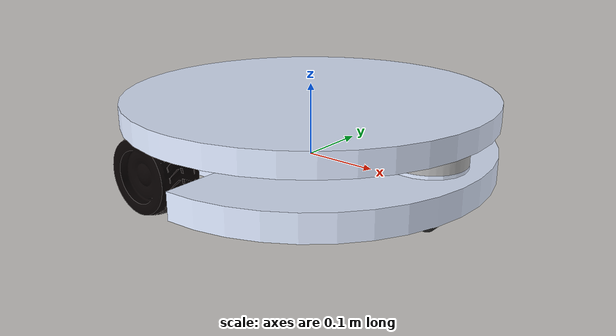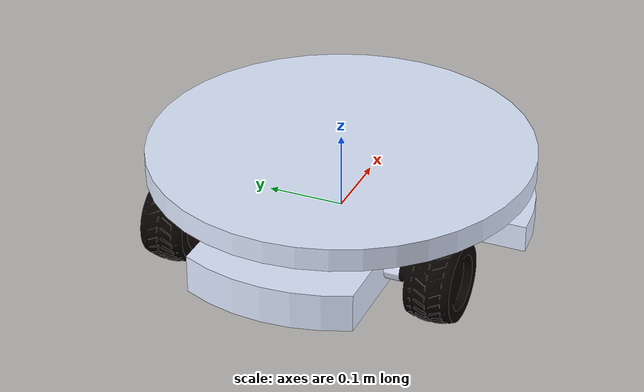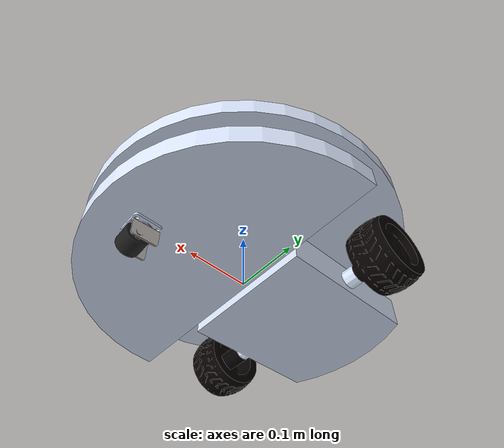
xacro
<?xml version="1.0" encoding="utf-8"?>

<robot
  name="diff_offset_robot">
  <link
    name="base_link">
    <inertial>
      <origin
        xyz="0.0077925 1.382E-07 0.0044813"
        rpy="0 0 0" />
      <mass
        value="16.766" />
      <inertia
        ixx="0.17714"
        ixy="-2.225E-17"
        ixz="-0.0072719"
        iyy="0.29215"
        iyz="1.8084E-15"
        izz="0.4637" />
    </inertial>
    <visual>
      <origin
        xyz="0 0 0"
        rpy="0 0 0" />
      <geometry>
        <mesh
          filename="package://model_robot/meshes/base_link.STL" />
      </geometry>
      <material
        name="">
        <color
          rgba="0.86667 0.9098 1 1" />
      </material>
    </visual>
    <collision>
      <origin
        xyz="0 0 0"
        rpy="0 0 0" />
      <geometry>
        <mesh
          filename="package://model_robot/meshes/base_link.STL" />
      </geometry>
    </collision>
  </link>
  <link
    name="left_wheel_link">
    <inertial>
      <origin
        xyz="2.2204E-16 -7.7716E-16 0.04781"
        rpy="0 0 0" />
      <mass
        value="0.37174" />
      <inertia
        ixx="0.00039822"
        ixy="6.9118E-19"
        ixz="4.4212E-19"
        iyy="0.00039822"
        iyz="-2.2832E-18"
        izz="0.00057276" />
    </inertial>
    <visual>
      <origin
        xyz="0 0 0"
        rpy="0 0 0" />
      <geometry>
        <mesh
          filename="package://model_robot/meshes/left_wheel_link.STL" />
      </geometry>
      <material
        name="">
        <color
          rgba="0.019608 0 0 1" />
      </material>
    </visual>
    <collision>
      <origin
        xyz="0 0 0"
        rpy="0 0 0" />
      <geometry>
        <mesh
          filename="package://model_robot/meshes/left_wheel_link.STL" />
      </geometry>
    </collision>
  </link>
  <joint
    name="left_wheel_joint"
    type="continuous">
    <origin
      xyz="-0.11225 0.13 0"
      rpy="1.5708 0.57871 3.1416" />
    <parent
      link="base_link" />
    <child
      link="left_wheel_link" />
    <axis
      xyz="0 0 1" />
    <limit
      effort="1000.0"
      velocity="100.0" />
    <dynamics
      damping="0.1"
      friction="0.1" />
  </joint>
  <link
    name="right_wheel_link">
    <inertial>
      <origin
        xyz="6.6613E-16 -2.2204E-16 -0.04781"
        rpy="0 0 0" />
      <mass
        value="0.37174" />
      <inertia
        ixx="0.00039822"
        ixy="-2.7444E-19"
        ixz="3.7384E-19"
        iyy="0.00039822"
        iyz="3.2089E-19"
        izz="0.00057276" />
    </inertial>
    <visual>
      <origin
        xyz="0 0 0"
        rpy="0 0 0" />
      <geometry>
        <mesh
          filename="package://model_robot/meshes/right_wheel_link.STL" />
      </geometry>
      <material
        name="">
        <color
          rgba="0.019608 0 0 1" />
      </material>
    </visual>
    <collision>
      <origin
        xyz="0 0 0"
        rpy="0 0 0" />
      <geometry>
        <mesh
          filename="package://model_robot/meshes/right_wheel_link.STL" />
      </geometry>
    </collision>
  </link>
  <joint
    name="right_wheel_joint"
    type="continuous">
    <origin
      xyz="-0.11225 -0.13 0"
      rpy="-1.5708 -0.061252 0" />
    <parent
      link="base_link" />
    <child
      link="right_wheel_link" />
    <axis
      xyz="0 0 1" />
    <limit
      effort="1000.0"
      velocity="100.0" />
    <dynamics
      damping="0.1"
      friction="0.1" />
  </joint>
  <link
    name="lidar_link">
    <inertial>
      <origin
        xyz="-2.22044604925031E-16 0 0.00998372049732055"
        rpy="0 0 0" />
      <mass
        value="0.194447333272832" />
      <inertia
        ixx="0.000127792042048439"
        ixy="-3.36102673470719E-21"
        ixz="1.19867346730935E-18"
        iyy="0.000127792042048439"
        iyz="1.19874708938594E-18"
        izz="0.000242659502252698" />
    </inertial>
    <visual>
      <origin
        xyz="0 0 0"
        rpy="0 0 0" />
      <geometry>
        <mesh
          filename="package://model_robot/meshes/lidar_link.STL" />
      </geometry>
      <material
        name="">
        <color
          rgba="0.698039215686274 0.698039215686274 0.698039215686274 1" />
      </material>
    </visual>
    <collision>
      <origin
        xyz="0 0 0"
        rpy="0 0 0" />
      <geometry>
        <mesh
          filename="package://model_robot/meshes/lidar_link.STL" />
      </geometry>
    </collision>
  </link>
  <joint
    name="lidar_joint"
    type="fixed">
    <origin
      xyz="0.18 0 0.03"
      rpy="0 0 0" />
    <parent
      link="base_link" />
    <child
      link="lidar_link" />
  </joint>
  <link
    name="top_base_link">
    <inertial>
      <origin
        xyz="8.8818E-16 8.8818E-16 0.043846"
        rpy="0 0 0" />
      <mass
        value="16.54" />
      <inertia
        ixx="0.25069"
        ixy="4.8639E-18"
        ixz="2.5866E-15"
        iyy="0.25069"
        iyz="2.5916E-15"
        izz="0.4978" />
    </inertial>
    <visual>
      <origin
        xyz="0 0 0"
        rpy="0 0 0" />
      <geometry>
        <mesh
          filename="package://model_robot/meshes/top_base_link.STL" />
      </geometry>
      <material
        name="">
        <color
          rgba="0.86667 0.9098 1 1" />
      </material>
    </visual>
    <collision>
      <origin
        xyz="0 0 0"
        rpy="0 0 0" />
      <geometry>
        <mesh
          filename="package://model_robot/meshes/top_base_link.STL" />
      </geometry>
    </collision>
  </link>
  <joint name="top_base_joint" type="continuous">
    <origin xyz="0 0 0.03" rpy="0 0 0" />
    <parent link="base_link" />
    <child link="top_base_link" />
    <axis xyz="0 0 1" />
    <limit effort="1000.0" velocity="20.0" />
    <dynamics damping="0.1" friction="0.1" />
  </joint>
  <link
    name="body_wheel_link">
    <inertial>
      <origin
        xyz="0.0012182 3.9726E-05 0.012909"
        rpy="0 0 0" />
      <mass
        value="0.067446" />
      <inertia
        ixx="1.7013E-05"
        ixy="1.4706E-07"
        ixz="1.1675E-07"
        iyy="1.2508E-05"
        iyz="3.8073E-09"
        izz="1.9263E-05" />
    </inertial>
    <visual>
      <origin
        xyz="0 0 0"
        rpy="0 0 0" />
      <geometry>
        <mesh
          filename="package://model_robot/meshes/body_wheel_link.STL" />
      </geometry>
      <material
        name="">
        <color
          rgba="0.77647 0.75686 0.73725 1" />
      </material>
    </visual>
    <collision>
      <origin
        xyz="0 0 0"
        rpy="0 0 0" />
      <geometry>
        <mesh
          filename="package://model_robot/meshes/body_wheel_link.STL" />
      </geometry>
    </collision>
  </link>
  <joint
    name="body_wheel_joint"
    type="continuous">
    <origin
      xyz="0.18 0 -0.015"
      rpy="3.1416 0 0" />
    <parent
      link="base_link" />
    <child
      link="body_wheel_link" />
    <axis
      xyz="0 0 1" />
    <limit
      effort="10"
      velocity="20" />
    <dynamics
      damping="0.01"/>
  </joint>
  <link
    name="caster_wheel_link">
    <inertial>
      <origin
        xyz="-2.2204E-16 2.2204E-16 0"
        rpy="0 0 0" />
      <mass
        value="0.034498" />
      <inertia
        ixx="5.4969E-06"
        ixy="-6.3793E-23"
        ixz="2.4265E-08"
        iyy="5.4961E-06"
        iyz="-1.9562E-21"
        izz="6.2402E-06" />
    </inertial>
    <visual>
      <origin
        xyz="0 0 0"
        rpy="0 0 0" />
      <geometry>
        <mesh
          filename="package://model_robot/meshes/caster_wheel_link.STL" />
      </geometry>
      <material
        name="">
        <color
          rgba="0.1098 0.1098 0.1098 1" />
      </material>
    </visual>
    <collision>
      <origin
        xyz="0 0 0"
        rpy="0 0 0" />
      <geometry>
        <mesh
          filename="package://model_robot/meshes/caster_wheel_link.STL" />
      </geometry>
    </collision>
  </link>
  <joint
    name="caster_wheel_joint"
    type="continuous">
    <origin
      xyz="0.0079957 0.00026075 0.023"
      rpy="1.5708 0 0" />
    <parent
      link="body_wheel_link" />
    <child
      link="caster_wheel_link" />
    <axis
      xyz="-0.032594 0 -0.99947" />
    <limit
      effort="10"
      velocity="20" />
  </joint>
  <ros2_control name="diff_offset_robot_control" type="system">
    <hardware>
      <plugin>gazebo_ros2_control/GazeboSystem</plugin>
    </hardware>

    <joint name="left_wheel_joint">
      <command_interface name="velocity"/>
      <command_interface name="effort"/>
      <state_interface name="position"/>
      <state_interface name="velocity"/>
      <state_interface name="effort"/>
    </joint>

    <joint name="right_wheel_joint">
      <command_interface name="velocity"/>
      <command_interface name="effort"/>
      <state_interface name="position"/>
      <state_interface name="velocity"/>
      <state_interface name="effort"/>
    </joint>

    <joint name="top_base_joint">
      <command_interface name="velocity"/>
      <command_interface name="effort"/>
      <state_interface name="position"/>
      <state_interface name="velocity"/>
      <state_interface name="effort"/>
    </joint>
  </ros2_control>

  <gazebo>
    <plugin name="gazebo_lidar_joint_state" filename="libgazebo_ros_joint_state_publisher.so">
      <update_rate>100</update_rate>
      <joint_name>body_wheel_joint</joint_name>
      <joint_name>caster_wheel_joint</joint_name>
    </plugin>

    <plugin name="gazebo_ros2_control" filename="libgazebo_ros2_control.so">
      <parameters>$(find model_robot)/config/ros2_controller.yaml</parameters>
    </plugin>
  </gazebo>

  <gazebo>
    <plugin name="p3d_base_controller" filename="libgazebo_ros_p3d.so">
      <ros>
        <namespace>/</namespace>
        <remapping>odom:=ground_truth/odom</remapping>
      </ros>
      <body_name>base_link</body_name>
      <frame_name>world</frame_name>
      <update_rate>50.0</update_rate>
      <xyz_offset>0 0 0</xyz_offset>
      <rpy_offset>0 0 0</rpy_offset>
      <gaussian_noise>0.0</gaussian_noise>
    </plugin>
  </gazebo>

  <gazebo reference="lidar_link">
    <sensor type="ray" name="mi_lidar_sensor">
      <pose>0 0 0 0 0 0</pose>

      <visualize>true</visualize>

      <update_rate>10.0</update_rate>

      <ray>
        <scan>
          <horizontal>
            <samples>360</samples>
            <resolution>1</resolution>
            <min_angle>-3.14159</min_angle>
            <max_angle>3.14159</max_angle>
          </horizontal>
        </scan>
        <range>
          <min>0.40</min>
          <max>12.0</max>
          <resolution>0.01</resolution>
        </range>
        <noise>
          <type>gaussian</type>
          <mean>0.0</mean>
          <stddev>0.01</stddev>
        </noise>
      </ray>

      <plugin name="gazebo_ros_lidar" filename="libgazebo_ros_ray_sensor.so">
        <ros>
          <remapping>~/out:=scan</remapping>
        </ros>
        <output_type>sensor_msgs/LaserScan</output_type>
        <frame_name>lidar_link</frame_name>
      </plugin>
    </sensor>
  </gazebo>

</robot>
